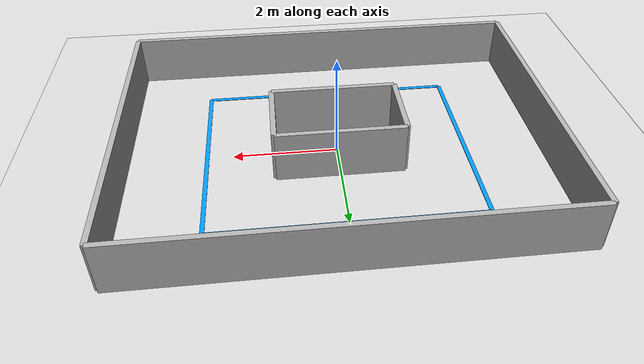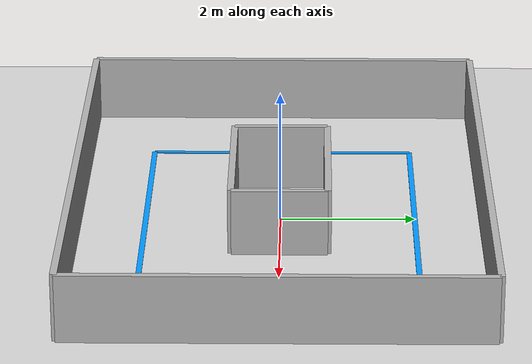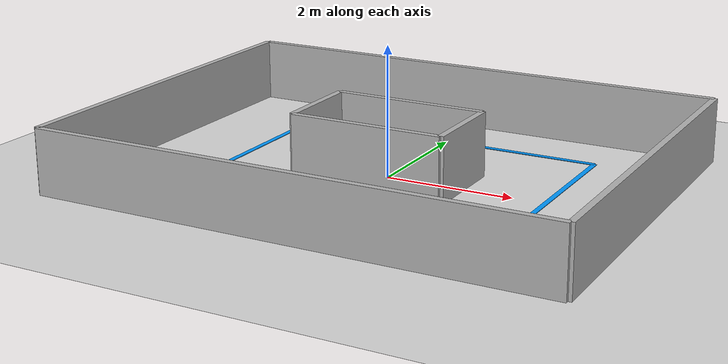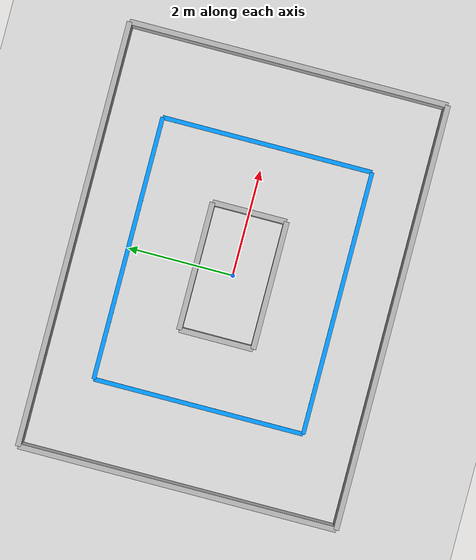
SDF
<?xml version="1.0"?>
<sdf version="1.8">
  <world name="corridor">
    <plugin filename="ignition-gazebo-physics-system" name="ignition::gazebo::systems::Physics"/>
    <plugin filename="ignition-gazebo-sensors-system" name="ignition::gazebo::systems::Sensors">
      <render_engine>ogre2</render_engine>
    </plugin>
    <plugin filename="ignition-gazebo-scene-broadcaster-system" name="ignition::gazebo::systems::SceneBroadcaster"/>
    <plugin filename="ignition-gazebo-user-commands-system" name="ignition::gazebo::systems::UserCommands"/>

    <light type="directional" name="sun">
      <cast_shadows>true</cast_shadows><pose>0 0 10 0 0 0</pose>
      <diffuse>0.9 0.9 0.9 1</diffuse><specular>0.2 0.2 0.2 1</specular>
      <direction>-0.5 0.1 -0.9</direction>
    </light>

    <model name="ground_plane"><static>true</static>
      <link name="link">
        <collision name="c"><geometry><plane><normal>0 0 1</normal><size>40 40</size></plane></geometry></collision>
        <visual name="v"><geometry><plane><normal>0 0 1</normal><size>40 40</size></plane></geometry>
          <material><ambient>0.85 0.85 0.85 1</ambient><diffuse>0.85 0.85 0.85 1</diffuse></material>
        </visual>
      </link>
    </model>

    <!-- Outer ring walls (8x6 m room), 1 m tall, 0.1 m thick -->
    <model name="walls"><static>true</static>
      <link name="n"><pose>0  3 0.5 0 0 0</pose>
        <collision name="c"><geometry><box><size>8 0.1 1</size></box></geometry></collision>
        <visual name="v"><geometry><box><size>8 0.1 1</size></box></geometry><material><diffuse>0.7 0.7 0.7 1</diffuse></material></visual></link>
      <link name="s"><pose>0 -3 0.5 0 0 0</pose>
        <collision name="c"><geometry><box><size>8 0.1 1</size></box></geometry></collision>
        <visual name="v"><geometry><box><size>8 0.1 1</size></box></geometry><material><diffuse>0.7 0.7 0.7 1</diffuse></material></visual></link>
      <link name="e"><pose>4  0 0.5 0 0 0</pose>
        <collision name="c"><geometry><box><size>0.1 6 1</size></box></geometry></collision>
        <visual name="v"><geometry><box><size>0.1 6 1</size></box></geometry><material><diffuse>0.7 0.7 0.7 1</diffuse></material></visual></link>
      <link name="w"><pose>-4 0 0.5 0 0 0</pose>
        <collision name="c"><geometry><box><size>0.1 6 1</size></box></geometry></collision>
        <visual name="v"><geometry><box><size>0.1 6 1</size></box></geometry><material><diffuse>0.7 0.7 0.7 1</diffuse></material></visual></link>
      <!-- Inner block (2.4x1.4 m) to force a ring corridor -->
      <link name="in_n"><pose>0  0.7 0.5 0 0 0</pose>
        <collision name="c"><geometry><box><size>2.4 0.1 1</size></box></geometry></collision>
        <visual name="v"><geometry><box><size>2.4 0.1 1</size></box></geometry><material><diffuse>0.7 0.7 0.7 1</diffuse></material></visual></link>
      <link name="in_s"><pose>0 -0.7 0.5 0 0 0</pose>
        <collision name="c"><geometry><box><size>2.4 0.1 1</size></box></geometry></collision>
        <visual name="v"><geometry><box><size>2.4 0.1 1</size></box></geometry><material><diffuse>0.7 0.7 0.7 1</diffuse></material></visual></link>
      <link name="in_e"><pose>1.2 0 0.5 0 0 0</pose>
        <collision name="c"><geometry><box><size>0.1 1.4 1</size></box></geometry></collision>
        <visual name="v"><geometry><box><size>0.1 1.4 1</size></box></geometry><material><diffuse>0.7 0.7 0.7 1</diffuse></material></visual></link>
      <link name="in_w"><pose>-1.2 0 0.5 0 0 0</pose>
        <collision name="c"><geometry><box><size>0.1 1.4 1</size></box></geometry></collision>
        <visual name="v"><geometry><box><size>0.1 1.4 1</size></box></geometry><material><diffuse>0.7 0.7 0.7 1</diffuse></material></visual></link>
    </model>

    <!-- Blue tape loop (mid-corridor rectangle), thin flat strips on the floor.
         Right-angle corners. Color RGB (0,153,255) = (0, 0.6, 1). Emissive so the camera sees it. -->
    <model name="blue_tape"><static>true</static>
      <link name="t_n"><pose>0  2.0 0.005 0 0 0</pose>
        <visual name="v"><geometry><box><size>5.0 0.08 0.01</size></box></geometry>
          <material><ambient>0 0.6 1 1</ambient><diffuse>0 0.6 1 1</diffuse><emissive>0 0.45 0.8 1</emissive></material></visual></link>
      <link name="t_s"><pose>0 -2.0 0.005 0 0 0</pose>
        <visual name="v"><geometry><box><size>5.0 0.08 0.01</size></box></geometry>
          <material><ambient>0 0.6 1 1</ambient><diffuse>0 0.6 1 1</diffuse><emissive>0 0.45 0.8 1</emissive></material></visual></link>
      <link name="t_e"><pose>2.5 0 0.005 0 0 0</pose>
        <visual name="v"><geometry><box><size>0.08 4.0 0.01</size></box></geometry>
          <material><ambient>0 0.6 1 1</ambient><diffuse>0 0.6 1 1</diffuse><emissive>0 0.45 0.8 1</emissive></material></visual></link>
      <link name="t_w"><pose>-2.5 0 0.005 0 0 0</pose>
        <visual name="v"><geometry><box><size>0.08 4.0 0.01</size></box></geometry>
          <material><ambient>0 0.6 1 1</ambient><diffuse>0 0.6 1 1</diffuse><emissive>0 0.45 0.8 1</emissive></material></visual></link>
    </model>
  </world>
</sdf>
